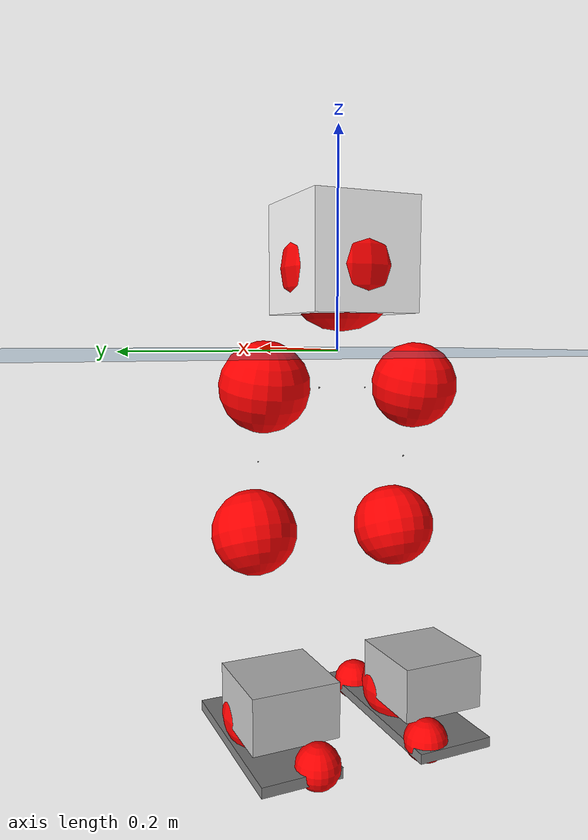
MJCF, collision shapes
<mujoco model="pi_12dof_release_v1">
  <compiler angle="radian" assetdir="assets" balanceinertia="true" inertiafromgeom="false"/>

  <option timestep="0.005" density="1.2" viscosity="2e-05"/>

  <size nkey="1"/>

  <visual>
    <quality shadowsize="8192"/>
    <map shadowclip="0.5"/>
  </visual>

  <default>
    <default class="/">
      <joint armature="0.01" damping="0.01" frictionloss="0.01"/>
      <geom contype="0" conaffinity="0" group="1" solref="-1000 -80"/>
      <site size="0.01 0.005 0.005" group="5"/>
      <general forcelimited="true" biastype="affine" gainprm="20" biasprm="0 -20 -0.5"/>
      <default class="foot">
        <geom size="0.0845 0.036 0.005" type="box" condim="6" group="4" priority="1" friction="0.9 0.2 0.2" solimp="0.015 1 0.005"/>
      </default>
      <default class="reward_collision_sphere">
        <geom group="5" rgba="1 0 0 1"/>
      </default>
    </default>
  </default>

  <asset>
    <texture type="skybox" colorspace="auto" name="//unnamed_texture_0" builtin="gradient" rgb1="0.95 0.95 0.95" rgb2="0.95 0.95 0.95" width="100" height="600"/>
    <texture type="2d" colorspace="auto" name="texplane" builtin="checker" rgb1="0.345 0.575 0.748" rgb2="0.345 0.575 0.748" markrgb="1 1 1" width="512" height="512"/>
    <material name="MatPlane" class="/" texture="texplane" texuniform="true" texrepeat="2 2" specular="0.9"/>
    <mesh name="baselink_1" class="/" file="baselink_1.STL"/>
    <mesh name="r_hip_pitch_link" class="/" file="r_hip_pitch_link.STL"/>
    <mesh name="r_hip_roll_link" class="/" file="r_hip_roll_link.STL"/>
    <mesh name="r_thigh_link" class="/" file="r_thigh_link.STL"/>
    <mesh name="r_calf_link" class="/" file="r_calf_link.STL"/>
    <mesh name="r_ankle_pitch_link" class="/" file="r_ankle_pitch_link.STL"/>
    <mesh name="r_ankle_roll_link" class="/" file="r_ankle_roll_link.STL"/>
    <mesh name="l_hip_pitch_link" class="/" file="l_hip_pitch_link.STL"/>
    <mesh name="l_hip_roll_link" class="/" file="l_hip_roll_link.STL"/>
    <mesh name="l_thigh_link" class="/" file="l_thigh_link.STL"/>
    <mesh name="l_calf_link" class="/" file="l_calf_link.STL"/>
    <mesh name="l_ankle_pitch_link" class="/" file="l_ankle_pitch_link.STL"/>
    <mesh name="l_ankle_roll_link" class="/" file="l_ankle_roll_link.STL"/>
  </asset>

  <worldbody>
    <geom name="floor" class="/" size="100 100 0.125" type="plane" group="0" material="MatPlane"/>
    <light name="toplight_shadow" class="/" pos="0 0 5" dir="0.0990148 0.0990148 -0.990148" type="directional" ambient="0.04 0.04 0.04" diffuse="0.55 0.55 0.55" specular="0.12 0.12 0.12"/>
    <light name="toplight_fill" class="/" pos="0 0 5" dir="0.0990148 0.0990148 -0.990148" type="directional" castshadow="false" ambient="0.04 0.04 0.04" diffuse="0.3 0.3 0.3" specular="0.08 0.08 0.08"/>
    <body name="trunk" pos="-0.00219155 -0.00276532 -0.00106381" quat="0.999999 -0.000183448 0.000435127 0.00132103">
      <inertial pos="0.000493647 -0.000477807 0.0424836" quat="0.694111 0.00647122 0.0127962 0.719726" mass="2.22056" diaginertia="0.0112477 0.0066595 0.00565091"/>
      <joint name="//unnamed_joint_0" type="free"/>
      <geom name="//unnamed_geom_1" class="/" type="mesh" density="0" rgba="1 1 1 1" mesh="baselink_1"/>
      <geom name="//unnamed_geom_2" class="/" size="0.0505267 0.0505267 0.0505267" pos="0 0 0.0846069" type="box" rgba="1 1 1 1"/>
      <geom name="//unnamed_geom_3" class="reward_collision_sphere" size="0.0555794" pos="0 0 0.074031"/>
      <site name="imu" class="/" pos="0.00109772 0.00403756 0.000495097" size="0.0101053"/>
      <camera name="track" class="/" pos="0 -1.88878 0" quat="0.707107 0.707107 0 0" mode="trackcom"/>
      <camera name="ego_camera" class="/" pos="0.0772221 0 0.190365" quat="-0.5 -0.5 0.5 0.5"/>
      <body name="r_hip_pitch_link" pos="-0.00203491 -0.0238164 -0.0330342" quat="0.992287 4.89531e-05 -0.123956 -0.000856946">
        <inertial pos="-0.00079134 -0.0553727 -0.00175591" quat="-0.0173557 0.705502 -0.0285765 0.707918" mass="0.399788" diaginertia="0.000131439 7.38257e-05 0.000116678"/>
        <joint name="r_hip_pitch_joint" class="/" pos="0 0 0" axis="-0.002491 -0.999945 -0.0101722" range="-1.74429 1.25656" armature="0.0101932" damping="0.00554544" frictionloss="0.0115148"/>
        <geom name="//unnamed_geom_4" class="/" type="mesh" density="0" rgba="0.75294 0.75294 0.75294 1" mesh="r_hip_pitch_link"/>
        <geom name="//unnamed_geom_5" class="/" size="0.000505267 0.000505267 0.000505267" type="box" rgba="0.75294 0.75294 0.75294 1"/>
        <body name="r_hip_roll_link" pos="0.000221397 -0.0530868 0.000989962" quat="1 -4.55055e-06 -1.47812e-05 -9.26563e-06">
          <inertial pos="0.00038689 -0.000990227 -0.0619548" quat="0.707796 -0.0772975 -0.082677 0.697291" mass="0.404375" diaginertia="0.00039283 0.000209504 0.000168596"/>
          <joint name="r_hip_roll_joint" class="/" pos="0 0 0" axis="-1 -0.000905944 -0.000260629" stiffness="0.011018" range="-0.175864 0.535357" armature="0.00872348" damping="0" frictionloss="0.0101469"/>
          <geom name="//unnamed_geom_6" class="/" type="mesh" density="0" rgba="0.75294 0.75294 0.75294 1" mesh="r_hip_roll_link"/>
          <geom name="//unnamed_geom_7" class="/" size="0.000505267 0.000505267 0.000505267" type="box" rgba="0.75294 0.75294 0.75294 1"/>
          <geom name="//unnamed_geom_8" class="reward_collision_sphere" size="0.0404214"/>
          <body name="r_thigh_link" pos="-0.00139864 0.000390049 -0.072677" quat="0.999999 -0.000868192 -1.83852e-05 0.001014">
            <inertial pos="0.00262326 0.00250096 -0.0529625" quat="0.729265 0.684205 0.00576098 -0.00141832" mass="0.11615" diaginertia="0.000143629 7.27657e-05 7.39684e-05"/>
            <joint name="r_thigh_joint" class="/" pos="0 0 0" axis="-0.000582987 -0.0125144 -0.999922" range="-0.298645 0.64819" armature="0.00870985" damping="0.0118819" frictionloss="0.0103298"/>
            <geom name="//unnamed_geom_9" class="/" type="mesh" density="0" rgba="0.75294 0.75294 0.75294 1" mesh="r_thigh_link"/>
            <geom name="//unnamed_geom_10" class="/" size="0.000505267 0.000505267 0.000505267" type="box" rgba="0.75294 0.75294 0.75294 1"/>
            <body name="r_calf_link" pos="-0.00117523 -1.49765e-05 -0.075329" quat="0.947908 -0.000180879 0.318545 0.000161879">
              <inertial pos="0.00244462 -0.0007154 -0.0738693" quat="0.999983 -0.00225685 0.000111443 0.00535366" mass="0.882354" diaginertia="0.00426946 0.00274121 0.000231164"/>
              <joint name="r_calf_joint" class="/" pos="0 0 0" axis="-0.00128074 -0.999999 0.000322057" stiffness="0.00987414" range="-1.64378 0.594198" armature="0.0110674" damping="0.00273283" frictionloss="0.0110121"/>
              <geom name="//unnamed_geom_11" class="/" type="mesh" density="0" rgba="0.75294 0.75294 0.75294 1" mesh="r_calf_link"/>
              <geom name="//unnamed_geom_12" class="/" size="0.000505267 0.000505267 0.000505267" type="box" rgba="0.75294 0.75294 0.75294 1"/>
              <geom name="//unnamed_geom_13" class="reward_collision_sphere" size="0.0404214"/>
              <body name="r_ankle_pitch_link" pos="-0.000653099 0.00107031 -0.145457" quat="0.980145 -0.0011 -0.19828 -0.000167257">
                <inertial pos="0.00210161 0.00166869 -0.000374882" quat="-0.00176815 0.706289 0.00111452 0.707921" mass="0.175785" diaginertia="0.000354623 0.000161952 0.000151412"/>
                <joint name="r_ankle_pitch_joint" class="/" pos="0 0 0" axis="0.00415819 -0.999951 0.00898027" range="-1.35346 0.557138" armature="0.0107034" damping="0.0113688" frictionloss="0.00872877"/>
                <geom name="//unnamed_geom_14" class="/" type="mesh" density="0" rgba="0.75294 0.75294 0.75294 1" mesh="r_ankle_pitch_link"/>
                <geom name="//unnamed_geom_15" class="/" size="0.0394108 0.0404214 0.0252633" type="box" rgba="0.75294 0.75294 0.75294 1"/>
                <body name="r_ankle_roll_link" pos="0.0810622 0.00291899 -0.000633531" quat="1 -5.54835e-05 2.06496e-05 -1.79496e-05">
                  <inertial pos="-0.0220999 0.000128206 -0.0153859" quat="0.556446 0.429277 0.435336 0.562647" mass="0.552763" diaginertia="0.00140136 0.00077365 0.000386974"/>
                  <joint name="r_ankle_roll_joint" class="/" pos="0 0 0" axis="-0.999981 -0.00427038 -0.00453431" range="-0.132787 0.095632" armature="0.00953743" damping="0" frictionloss="0.0103546"/>
                  <geom name="//unnamed_geom_16" class="/" type="mesh" density="0" rgba="0.75294 0.75294 0.75294 1" mesh="r_ankle_roll_link"/>
                  <geom name="//unnamed_geom_17" class="/" type="mesh" rgba="0.75294 0.75294 0.75294 1" mesh="r_ankle_roll_link"/>
                  <geom name="right_foot" class="foot" size="0.0919052 0.0370286 0.00461988" pos="-0.052511 0 -0.0465338"/>
                  <geom name="//unnamed_geom_19" class="reward_collision_sphere" size="0.0404214" pos="-0.0514814 0 -0.0211517"/>
                  <geom name="//unnamed_geom_20" class="reward_collision_sphere" size="0.0202107" pos="0.0154444 0.0188878 -0.0423034"/>
                  <geom name="//unnamed_geom_21" class="reward_collision_sphere" size="0.0202107" pos="-0.123555 0.0188878 -0.0423034"/>
                  <site name="right_foot" class="foot" pos="-0.052511 0 -0.0465338" size="0.0101053"/>
                </body>
              </body>
            </body>
          </body>
        </body>
      </body>
      <body name="l_hip_pitch_link" pos="0.000237832 0.022047 -0.0323208" quat="0.992172 0.000196083 -0.12488 0.00047423">
        <inertial pos="0.00304504 0.051233 -0.000281508" quat="-0.0388379 0.705146 0.029216 0.707395" mass="0.397896" diaginertia="0.000147773 8.14553e-05 0.000133224"/>
        <joint name="l_hip_pitch_joint" class="/" pos="0 0 0" axis="0.0014323 0.999998 0.00133339" range="-1.19947 1.75415" armature="0.0115432" damping="0" frictionloss="0.010779"/>
        <geom name="//unnamed_geom_22" class="/" type="mesh" density="0" rgba="0.75294 0.75294 0.75294 1" mesh="l_hip_pitch_link"/>
        <geom name="//unnamed_geom_23" class="/" size="0.000505267 0.000505267 0.000505267" type="box" rgba="0.75294 0.75294 0.75294 1"/>
        <body name="l_hip_roll_link" pos="-0.00255782 0.0546529 0.00280795" quat="0.999999 7.09445e-05 -0.000564743 0.00106197">
          <inertial pos="-0.000954619 0.000818245 -0.0639582" quat="0.694588 -0.068376 -0.0696256 0.712758" mass="0.387531" diaginertia="0.000386116 0.000201384 0.000171293"/>
          <joint name="l_hip_roll_joint" class="/" pos="0 0 0" axis="-0.999985 -0.00243329 0.00497141" stiffness="0.00617534" range="-0.505753 0.093818" armature="0.01157" damping="0.00156873" frictionloss="0.0110642"/>
          <geom name="//unnamed_geom_24" class="/" type="mesh" density="0" rgba="0.75294 0.75294 0.75294 1" mesh="l_hip_roll_link"/>
          <geom name="//unnamed_geom_25" class="/" size="0.000505267 0.000505267 0.000505267" type="box" rgba="0.75294 0.75294 0.75294 1"/>
          <geom name="//unnamed_geom_26" class="reward_collision_sphere" size="0.0404214"/>
          <body name="l_thigh_link" pos="8.64292e-06 -0.000393522 -0.0711907" quat="1 -0.00015571 0.000176188 0.000147984">
            <inertial pos="0.00012945 -0.00178451 -0.0479429" quat="0.675477 0.737379 -0.00127679 -0.000977865" mass="0.116268" diaginertia="0.000145064 7.15285e-05 7.7455e-05"/>
            <joint name="l_thigh_joint" class="/" pos="0 0 0" axis="0.00176756 -0.00403263 -0.99999" stiffness="0.00171664" range="-0.605952 0.322058" armature="0.00886609" damping="0.00446497" frictionloss="0.0106441"/>
            <geom name="//unnamed_geom_27" class="/" type="mesh" density="0" rgba="0.75294 0.75294 0.75294 1" mesh="l_thigh_link"/>
            <geom name="//unnamed_geom_28" class="/" size="0.000505267 0.000505267 0.000505267" type="box" rgba="0.75294 0.75294 0.75294 1"/>
            <body name="l_calf_link" pos="-0.000238477 -0.00256363 -0.0717152" quat="0.948114 6.56746e-06 0.317931 0.000165922">
              <inertial pos="0.000417568 0.00588282 -0.073977" quat="0.999941 0.00851352 -0.00206956 -0.00649167" mass="0.837365" diaginertia="0.00417229 0.0026988 0.000226396"/>
              <joint name="l_calf_joint" class="/" pos="0 0 0" axis="-0.00143967 0.999984 0.00552741" range="-0.631169 1.63154" armature="0.00914741" damping="0.0124968" frictionloss="0.0111745"/>
              <geom name="//unnamed_geom_29" class="/" type="mesh" density="0" rgba="0.75294 0.75294 0.75294 1" mesh="l_calf_link"/>
              <geom name="//unnamed_geom_30" class="/" size="0.000505267 0.000505267 0.000505267" type="box" rgba="0.75294 0.75294 0.75294 1"/>
              <geom name="//unnamed_geom_31" class="reward_collision_sphere" size="0.0404214"/>
              <body name="l_ankle_pitch_link" pos="0.000433605 -0.000765435 -0.151092" quat="0.980085 0.00077189 -0.198574 -0.000243972">
                <inertial pos="0.00528504 -0.00284038 0.00013207" quat="-0.00320441 0.706788 0.00172572 0.707416" mass="0.17548" diaginertia="0.000346397 0.000163975 0.000151803"/>
                <joint name="l_ankle_pitch_joint" class="/" pos="0 0 0" axis="0.00102014 0.999991 0.00420513" stiffness="0.00346909" range="-0.488355 1.30287" armature="0.0101369" damping="0.0121185" frictionloss="0.0107988"/>
                <geom name="//unnamed_geom_32" class="/" type="mesh" density="0" rgba="0.75294 0.75294 0.75294 1" mesh="l_ankle_pitch_link"/>
                <geom name="//unnamed_geom_33" class="/" size="0.0394108 0.0404214 0.0252633" type="box" rgba="0.75294 0.75294 0.75294 1"/>
                <body name="l_ankle_roll_link" pos="0.0763482 0.00294689 0.000568305" quat="1 -0.000358192 0.000108147 -0.000236988">
                  <inertial pos="-0.0230786 -0.000388037 -0.0131351" quat="0.561976 0.430147 0.437025 0.555126" mass="0.533434" diaginertia="0.00131138 0.000728399 0.000377452"/>
                  <joint name="l_ankle_roll_joint" class="/" pos="0 0 0" axis="-0.999893 -0.0120831 -0.00821261" range="-0.15327 0.156505" armature="0.00984588" damping="0.02031" frictionloss="0.00994547"/>
                  <geom name="//unnamed_geom_34" class="/" type="mesh" density="0" rgba="0.75294 0.75294 0.75294 1" mesh="l_ankle_roll_link"/>
                  <geom name="//unnamed_geom_35" class="/" type="mesh" rgba="0.75294 0.75294 0.75294 1" mesh="l_ankle_roll_link"/>
                  <geom name="left_foot" class="foot" size="0.0824938 0.0372293 0.00484617" pos="-0.052511 0 -0.0465338"/>
                  <geom name="//unnamed_geom_37" class="reward_collision_sphere" size="0.0404214" pos="-0.0514814 0 -0.0211517"/>
                  <geom name="//unnamed_geom_38" class="reward_collision_sphere" size="0.0202107" pos="0.0154444 -0.0188878 -0.0423034"/>
                  <geom name="//unnamed_geom_39" class="reward_collision_sphere" size="0.0202107" pos="-0.123555 -0.0188878 -0.0423034"/>
                  <site name="left_foot" class="foot" pos="-0.052511 0 -0.0465338" size="0.0101053"/>
                </body>
              </body>
            </body>
          </body>
        </body>
      </body>
    </body>
  </worldbody>

  <contact>
    <pair class="/" geom1="floor" geom2="right_foot" name="//unnamed_contact_1"/>
    <pair class="/" geom1="floor" geom2="left_foot" name="//unnamed_contact_0"/>
  </contact>

  <actuator>
    <general name="r_hip_pitch_joint" class="/" joint="r_hip_pitch_joint" forcerange="-21.7898 21.7898" gainprm="19.7366" biasprm="0 -19.7366 -0.477849"/>
    <general name="r_hip_roll_joint" class="/" joint="r_hip_roll_joint" forcerange="-21.4772 21.4772" gainprm="19.7366" biasprm="0 -19.7366 -0.477849"/>
    <general name="r_thigh_joint" class="/" joint="r_thigh_joint" forcerange="-21.2893 21.2893" gainprm="19.7366" biasprm="0 -19.7366 -0.477849"/>
    <general name="r_calf_joint" class="/" joint="r_calf_joint" forcerange="-21.9286 21.9286" gainprm="19.7366" biasprm="0 -19.7366 -0.477849"/>
    <general name="r_ankle_pitch_joint" class="/" joint="r_ankle_pitch_joint" forcerange="-20.5638 20.5638" gainprm="19.7366" biasprm="0 -19.7366 -0.477849"/>
    <general name="r_ankle_roll_joint" class="/" joint="r_ankle_roll_joint" forcerange="-21.8928 21.8928" gainprm="19.7366" biasprm="0 -19.7366 -0.477849"/>
    <general name="l_hip_pitch_joint" class="/" joint="l_hip_pitch_joint" forcerange="-21.4041 21.4041" gainprm="19.7366" biasprm="0 -19.7366 -0.477849"/>
    <general name="l_hip_roll_joint" class="/" joint="l_hip_roll_joint" forcerange="-19.6321 19.6321" gainprm="19.7366" biasprm="0 -19.7366 -0.477849"/>
    <general name="l_thigh_joint" class="/" joint="l_thigh_joint" forcerange="-21.1791 21.1791" gainprm="19.7366" biasprm="0 -19.7366 -0.477849"/>
    <general name="l_calf_joint" class="/" joint="l_calf_joint" forcerange="-22.6099 22.6099" gainprm="19.7366" biasprm="0 -19.7366 -0.477849"/>
    <general name="l_ankle_pitch_joint" class="/" joint="l_ankle_pitch_joint" forcerange="-21.3165 21.3165" gainprm="19.7366" biasprm="0 -19.7366 -0.477849"/>
    <general name="l_ankle_roll_joint" class="/" joint="l_ankle_roll_joint" forcerange="-18.9758 18.9758" gainprm="19.7366" biasprm="0 -19.7366 -0.477849"/>
  </actuator>

  <sensor>
    <gyro site="imu" name="imu_angular_velocity"/>
    <velocimeter site="imu" name="imu_linear_velocity"/>
    <framelinvel objtype="site" objname="left_foot" name="left_foot_global_linear_velocity"/>
    <framelinvel objtype="site" objname="right_foot" name="right_foot_global_linear_velocity"/>
  </sensor>

  <keyframe>
    <key name="home" qpos="0 0 0.291 1 0 0 0 0.4 0 0 -0.8 0.4 0 -0.4 0 0 0.8 -0.4 0"/>
  </keyframe>
</mujoco>
